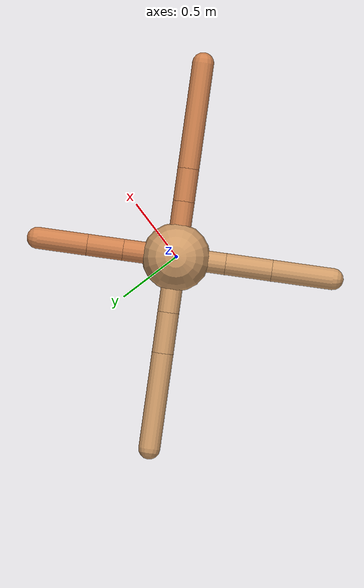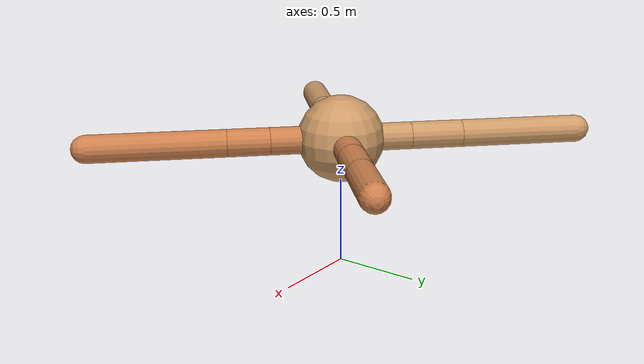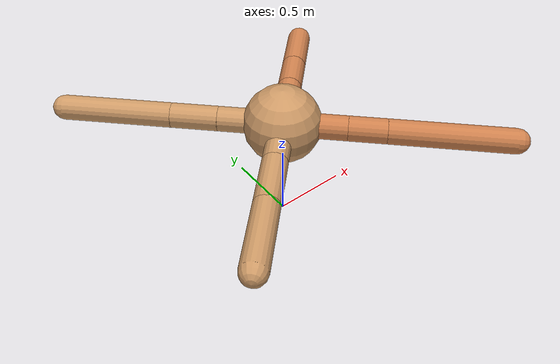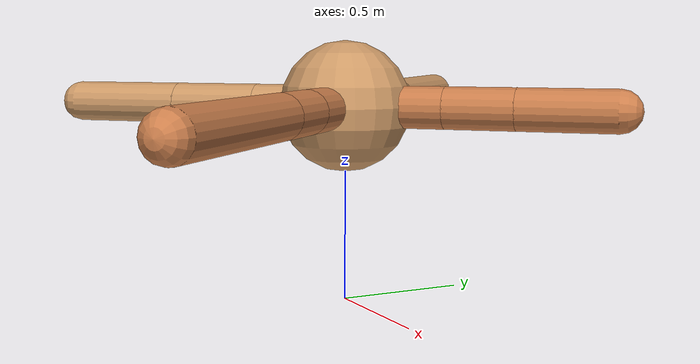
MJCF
<mujoco model="ant">
  <compiler angle="degree" coordinate="local" inertiafromgeom="true" />
  <option integrator="RK4" timestep="0.01" />
  <custom>
    <numeric data="0.0 0.0 0.55 1.0 0.0 0.0 0.0 0.0 1.0 0.0 -1.0 0.0 -1.0 0.0 1.0" name="init_qpos" />
  </custom>
  <default>
    <joint armature="1" damping="1" limited="true" />
    <geom conaffinity="0" condim="3" density="5.0" friction="1.5 0.1 0.1" margin="0.01" rgba="0.8 0.6 0.4 1" />
  </default>
  <worldbody>
    <body name="torso" pos="0 0 0.75">
      <geom name="torso_geom" pos="0 0 0" size="0.25" type="sphere" />

      <body name="front_left_leg" pos="0 0 0">
        <geom fromto="0.0 0.0 0.0 0.2749136170599162 0.2749136170599162 0.0" name="aux_1_geom" size="0.08" type="capsule" rgba=".8 .5 .3 1" />
        <body name="aux_1" pos="0.2749136170599162 0.2749136170599162 0.0">
          <joint axis="0 0 1" name="hip_1" pos="0.0 0.0 0.0" range="-40 40" type="hinge" />
          <geom fromto="0.0 0.0 0.0 0.18696617177124827 0.18696617177124827 0.0" name="left_leg_geom" size="0.08" type="capsule" rgba=".8 .5 .3 1" />
          <body pos="0.18696617177124827 0.18696617177124827 0.0" name="front_left_foot">
            <joint axis="-1 1 0" name="ankle_1" pos="0.0 0.0 0.0" range="30 100" type="hinge" />
            <geom fromto="0.0 0.0 0.0 0.25733419530646806 0.25733419530646806 0.0" name="left_ankle_geom" size="0.08" type="capsule" rgba=".8 .5 .3 1" />
          </body>
        </body>
      </body>
      <body name="front_right_leg" pos="0 0 0">
        <geom fromto="0.0 0.0 0.0 -0.2867459549991757 0.2867459549991757 0.0" name="aux_2_geom" size="0.08" type="capsule" />
        <body name="aux_2" pos="-0.2867459549991757 0.2867459549991757 0.0">
          <joint axis="0 0 1" name="hip_2" pos="0.0 0.0 0.0" range="-40 40" type="hinge" />
          <geom fromto="0.0 0.0 0.0 -0.2122344973293945 0.2122344973293945 0.0" name="right_leg_geom" size="0.08" type="capsule" />
          <body pos="-0.2122344973293945 0.2122344973293945 0.0" name="front_right_foot">
            <joint axis="1 1 0" name="ankle_2" pos="0.0 0.0 0.0" range="-100 -30" type="hinge" />
            <geom fromto="0.0 0.0 0.0 -0.4956326611513777 0.4956326611513777 0.0" name="right_ankle_geom" size="0.08" type="capsule" />
          </body>
        </body>
      </body>
      <body name="left_back_leg" pos="0 0 0">
        <geom fromto="0.0 0.0 0.0 -0.25601857313773535 -0.25601857313773535 0.0" name="aux_3_geom" size="0.08" type="capsule" />
        <body name="aux_3" pos="-0.25601857313773535 -0.25601857313773535 0.0">
          <joint axis="0 0 1" name="hip_3" pos="0.0 0.0 0.0" range="-40 40" type="hinge" />
          <geom fromto="0.0 0.0 0.0 -0.24071866018211843 -0.24071866018211843 0.0" name="back_leg_geom" size="0.08" type="capsule" />
          <body pos="-0.24071866018211843 -0.24071866018211843 0.0" name="left_back_foot">
            <joint axis="-1 1 0" name="ankle_3" pos="0.0 0.0 0.0" range="-100 -30" type="hinge" />
            <geom fromto="0.0 0.0 0.0 -0.3174598723866838 -0.3174598723866838 0.0" name="third_ankle_geom" size="0.08" type="capsule" />
          </body>
        </body>
      </body>
      <body name="right_back_leg" pos="0 0 0">
        <geom fromto="0.0 0.0 0.0 0.2887707640460267 -0.2887707640460267 0.0" name="aux_4_geom" size="0.08" type="capsule" rgba=".8 .5 .3 1" />
        <body name="aux_4" pos="0.2887707640460267 -0.2887707640460267 0.0">
          <joint axis="0 0 1" name="hip_4" pos="0.0 0.0 0.0" range="-40 40" type="hinge" />
          <geom fromto="0.0 0.0 0.0 0.17129136546360033 -0.17129136546360033 0.0" name="rightback_leg_geom" size="0.08" type="capsule" rgba=".8 .5 .3 1" />
          <body pos="0.17129136546360033 -0.17129136546360033 0.0" name="right_back_foot">
            <joint axis="1 1 0" name="ankle_4" pos="0.0 0.0 0.0" range="30 100" type="hinge" />
            <geom fromto="0.0 0.0 0.0 0.5482149655123186 -0.5482149655123186 0.0" name="fourth_ankle_geom" size="0.08" type="capsule" rgba=".8 .5 .3 1" />
          </body>
        </body>
      </body>
    </body>
  </worldbody>
  <actuator>
    <motor ctrllimited="true" ctrlrange="-1.0 1.0" joint="hip_4" gear="150" />
    <motor ctrllimited="true" ctrlrange="-1.0 1.0" joint="ankle_4" gear="150" />
    <motor ctrllimited="true" ctrlrange="-1.0 1.0" joint="hip_1" gear="150" />
    <motor ctrllimited="true" ctrlrange="-1.0 1.0" joint="ankle_1" gear="150" />
    <motor ctrllimited="true" ctrlrange="-1.0 1.0" joint="hip_2" gear="150" />
    <motor ctrllimited="true" ctrlrange="-1.0 1.0" joint="ankle_2" gear="150" />
    <motor ctrllimited="true" ctrlrange="-1.0 1.0" joint="hip_3" gear="150" />
    <motor ctrllimited="true" ctrlrange="-1.0 1.0" joint="ankle_3" gear="150" />
  </actuator>
</mujoco>
